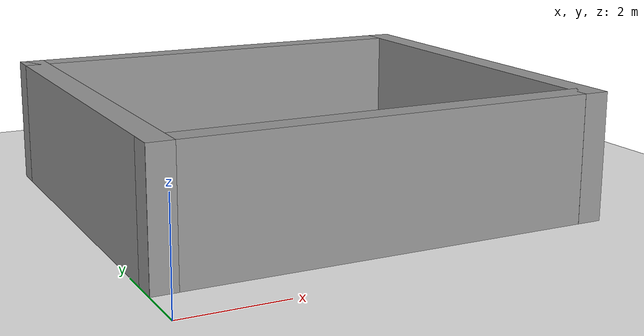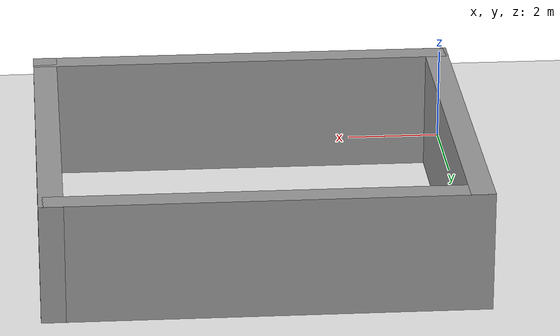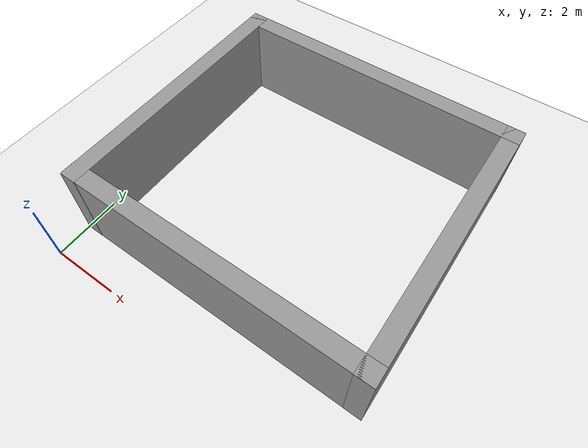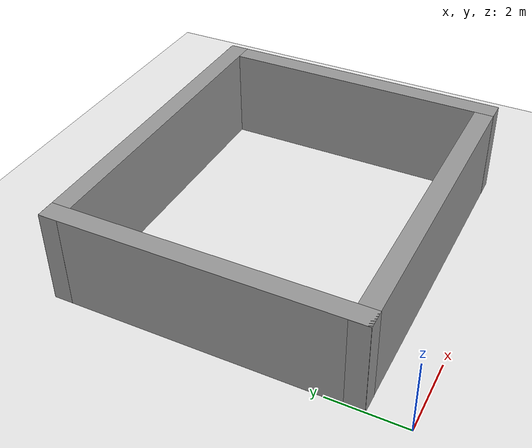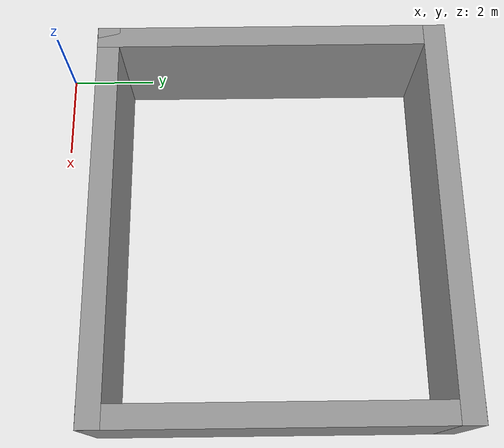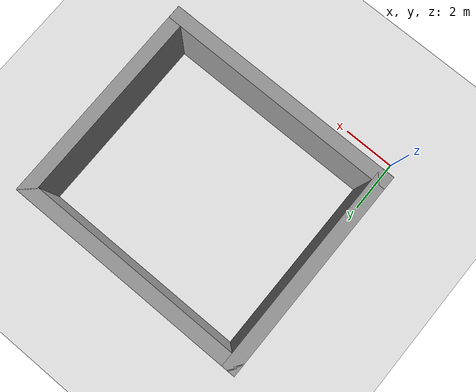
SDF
<sdf version="1.4">
 <world name="default">
  <light name="sun" type="directional">
   <pose>0 0 10 0 -0 0</pose>
   <diffuse>0.8 0.8 0.8 1</diffuse>
   <specular>0.2 0.2 0.2 1</specular>
   <attenuation>
    <range>1000</range>
    <constant>0.9</constant>
    <linear>0.01</linear>
    <quadratic>0.001</quadratic>
   </attenuation>
   <direction>0.5 0.1 -0.9</direction>
  </light>
  <scene><ambient>0.4 0.4 0.4 1</ambient><background>0.53 0.808 0.98 1</background><shadows>1</shadows></scene>
  <physics type="ode">
   <max_step_size>0.01</max_step_size>
   <real_time_factor>1</real_time_factor>
   <real_time_update_rate>100</real_time_update_rate>
   <gravity>0 0 -9.8</gravity>
  </physics>
  <model name="ground_plane_0">
   <static>1</static>
   <link name="link">
    <collision name="collision">
     <geometry><plane><normal>0 0 1</normal><size>100 100</size></plane></geometry>
     <surface><friction><ode><mu>100</mu><mu2>50</mu2></ode></friction></surface>
    </collision>
    <visual name="visual">
     <cast_shadows>0</cast_shadows>
     <geometry><plane><normal>0 0 1</normal><size>100 100</size></plane></geometry>
     <material>
      <script><uri>file://media/materials/scripts/gazebo.material</uri><name>Gazebo/White</name></script>
     </material>
    </visual>
    <velocity_decay><linear>0</linear><angular>0</angular></velocity_decay>
   </link>
   <pose>0.497681 0 0 0 -0 0</pose>
  </model>
  <spherical_coordinates>
   <surface_model>EARTH_WGS84</surface_model>
   <latitude_deg>0</latitude_deg>
   <longitude_deg>0</longitude_deg>
   <elevation>0</elevation>
   <heading_deg>0</heading_deg>
  </spherical_coordinates>
  <model name="laser_model2">
   <link name="Wall_0">
    <collision name="Wall_0_Collision">
     <geometry><box><size>9 0.5 2.5</size></box></geometry>
     <pose>0 0 1.25 0 -0 0</pose>
    </collision>
    <visual name="Wall_0_Visual">
     <pose>0 0 1.25 0 -0 0</pose>
     <geometry><box><size>9 0.5 2.5</size></box></geometry>
     <material>
      <script><uri>file://media/materials/scripts/gazebo.material</uri><name>Gazebo/Grey</name></script>
     </material>
    </visual>
    <velocity_decay><linear>0</linear><angular>0</angular></velocity_decay>
    <pose>-0.22 -0.84 0 0 -0 0</pose>
   </link>
   <link name="Wall_2">
    <collision name="Wall_2_Collision">
     <geometry><box><size>8 0.5 2.5</size></box></geometry>
     <pose>0 0 1.25 0 -0 0</pose>
    </collision>
    <visual name="Wall_2_Visual">
     <pose>0 0 1.25 0 -0 0</pose>
     <geometry><box><size>8 0.5 2.5</size></box></geometry>
     <material>
      <script><uri>file://media/materials/scripts/gazebo.material</uri><name>Gazebo/Grey</name></script>
     </material>
    </visual>
    <velocity_decay><linear>0</linear><angular>0</angular></velocity_decay>
    <pose>-4.46967 -4.59138 0 0 0 -1.5708</pose>
   </link>
   <link name="Wall_4">
    <collision name="Wall_4_Collision">
     <geometry><box><size>8 0.5 2.5</size></box></geometry>
     <pose>0 0 1.25 0 -0 0</pose>
    </collision>
    <visual name="Wall_4_Visual">
     <pose>0 0 1.25 0 -0 0</pose>
     <geometry><box><size>8 0.5 2.5</size></box></geometry>
     <material>
      <script><uri>file://media/materials/scripts/gazebo.material</uri><name>Gazebo/Grey</name></script>
     </material>
    </visual>
    <velocity_decay><linear>0</linear><angular>0</angular></velocity_decay>
    <pose>4.02915 -4.5883 0 0 0 -1.5708</pose>
   </link>
   <link name="Wall_6">
    <collision name="Wall_6_Collision">
     <geometry><box><size>9 0.5 2.5</size></box></geometry>
     <pose>0 0 1.25 0 -0 0</pose>
    </collision>
    <visual name="Wall_6_Visual">
     <pose>0 0 1.25 0 -0 0</pose>
     <geometry><box><size>9 0.5 2.5</size></box></geometry>
     <material>
      <script><uri>file://media/materials/scripts/gazebo.material</uri><name>Gazebo/Grey</name></script>
     </material>
    </visual>
    <velocity_decay><linear>0</linear><angular>0</angular></velocity_decay>
    <pose>-0.222422 -8.33642 0 0 -0 0</pose>
   </link>
   <static>1</static>
   <pose>4.72894 9.64321 0 0 -0 0</pose>
  </model>
 </world>
</sdf>
